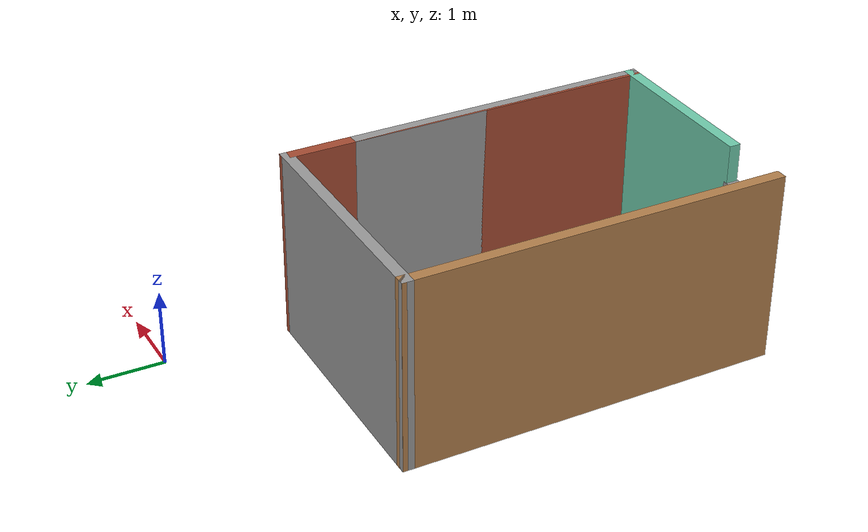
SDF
<?xml version='1.0'?>
<sdf version='1.6'>
  <model name='house'>
    <pose frame=''>-1.65913 -4.09872 0 0 -0 0</pose>
    <link name='Door_0'>
      <collision name='Door_0_Collision'>
        <geometry>
          <box>
            <size>0.9 0.17 2</size>
          </box>
        </geometry>
        <pose frame=''>0 0 1 0 -0 0</pose>
      </collision>
      <visual name='Door_0_Visual'>
        <pose frame=''>0 0 1 0 -0 0</pose>
        <geometry>
          <box>
            <size>0.9 0.17 2</size>
          </box>
        </geometry>
        <material>
          <script>
            <uri>file://media/materials/scripts/gazebo.material</uri>
            <name>Gazebo/Grey</name>
          </script>
        </material>
      </visual>
      <pose frame=''>-1.11144 -2.43119 0 0 -0 0</pose>
    </link>
    <link name='Wall_19'>
      <collision name='Wall_19_Collision'>
        <geometry>
          <box>
            <size>0.15 0.15 2.5</size>
          </box>
        </geometry>
        <pose frame=''>0 0 1.25 0 -0 0</pose>
      </collision>
      <visual name='Wall_19_Visual'>
        <pose frame=''>0 0 1.25 0 -0 0</pose>
        <geometry>
          <box>
            <size>0.15 0.15 2.5</size>
          </box>
        </geometry>
        <material>
          <script>
            <uri>file://media/materials/scripts/gazebo.material</uri>
            <name>Gazebo/Grey</name>
          </script>
          <ambient>1 1 1 1</ambient>
        </material>
        <meta>
          <layer>0</layer>
        </meta>
      </visual>
      <pose frame=''>1.5424 -2.44029 0 0 -0 0</pose>
    </link>
    <link name='Wall_23'>
      <collision name='Wall_23_Collision'>
        <geometry>
          <box>
            <size>4.06521 0.15 2.5</size>
          </box>
        </geometry>
        <pose frame=''>0 0 1.25 0 -0 0</pose>
      </collision>
      <visual name='Wall_23_Visual'>
        <pose frame=''>0 0 1.25 0 -0 0</pose>
        <geometry>
          <box>
            <size>4.06521 0.15 2.5</size>
          </box>
        </geometry>
        <material>
          <script>
            <uri>file://media/materials/scripts/gazebo.material</uri>
            <name>Gazebo/Grey</name>
          </script>
          <ambient>1 1 1 1</ambient>
        </material>
        <meta>
          <layer>0</layer>
        </meta>
      </visual>
      <pose frame=''>1.5424 -0.482688 0 0 -0 1.5708</pose>
    </link>
    <link name='Wall_30'>
      <collision name='Wall_30_Collision'>
        <geometry>
          <box>
            <size>2.33562 0.15 2.5</size>
          </box>
        </geometry>
        <pose frame=''>0 0 1.25 0 -0 0</pose>
      </collision>
      <visual name='Wall_30_Visual'>
        <pose frame=''>0 0 1.25 0 -0 0</pose>
        <geometry>
          <box>
            <size>2.33562 0.15 2.5</size>
          </box>
        </geometry>
        <material>
          <script>
            <uri>file://media/materials/scripts/gazebo.material</uri>
            <name>Gazebo/Grey</name>
          </script>
          <ambient>0.435294 0.796078 0.67451 1</ambient>
        </material>
        <meta>
          <layer>0</layer>
        </meta>
      </visual>
      <pose frame=''>0.449618 -2.43195 0 0 -0 -0.007632</pose>
    </link>
    <link name='Wall_4'>
      <collision name='Wall_4_Collision'>
        <geometry>
          <box>
            <size>5 0.15 2.5</size>
          </box>
        </geometry>
        <pose frame=''>0 0 1.25 0 -0 0</pose>
      </collision>
      <visual name='Wall_4_Visual'>
        <pose frame=''>0 0 1.25 0 -0 0</pose>
        <geometry>
          <box>
            <size>5 0.15 2.5</size>
          </box>
        </geometry>
        <material>
          <script>
            <uri>file://media/materials/scripts/gazebo.material</uri>
            <name>Gazebo/Wood</name>
          </script>
          <ambient>1 1 1 1</ambient>
        </material>
        <meta>
          <layer>0</layer>
        </meta>
      </visual>
      <pose frame=''>-1.5424 0.015126 0 0 -0 -1.5708</pose>
    </link>
    <link name='Wall_6'>
      <collision name='Wall_6_Collision'>
        <geometry>
          <box>
            <size>3.23513 0.15 2.5</size>
          </box>
        </geometry>
        <pose frame=''>0 0 1.25 0 -0 0</pose>
      </collision>
      <visual name='Wall_6_Visual'>
        <pose frame=''>0 0 1.25 0 -0 0</pose>
        <geometry>
          <box>
            <size>3.23513 0.15 2.5</size>
          </box>
        </geometry>
        <material>
          <script>
            <uri>file://media/materials/scripts/gazebo.material</uri>
            <name>Gazebo/Grey</name>
          </script>
          <ambient>1 1 1 1</ambient>
        </material>
        <meta>
          <layer>0</layer>
        </meta>
      </visual>
      <pose frame=''>0 2.42492 0 0 -0 -0.00986</pose>
    </link>
    <link name='Wall_8'>
      <collision name='Wall_8_Collision'>
        <geometry>
          <box>
            <size>5 0.15 2.5</size>
          </box>
        </geometry>
        <pose frame=''>0 0 1.25 0 -0 0</pose>
      </collision>
      <visual name='Wall_8_Visual'>
        <pose frame=''>0 0 1.25 0 -0 0</pose>
        <geometry>
          <box>
            <size>5 0.15 2.5</size>
          </box>
        </geometry>
        <material>
          <script>
            <uri>file://media/materials/scripts/gazebo.material</uri>
            <name>Gazebo/Bricks</name>
          </script>
          <ambient>0.435294 0.796078 0.67451 1</ambient>
        </material>
        <meta>
          <layer>0</layer>
        </meta>
      </visual>
      <pose frame=''>1.5424 -0.015292 0 0 -0 -1.5708</pose>
    </link>
    <static>1</static>
  </model>
</sdf>
